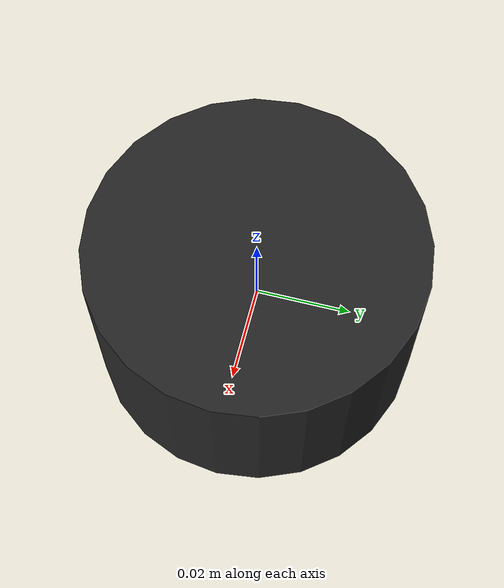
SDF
<?xml version="1.0"?>
<sdf version="1.6">
  <model name="livox_mid360">
    <link name="base_link">
      <inertial>
        <mass>0.265</mass>
        <inertia>
          <ixx>0.0002</ixx>
          <ixy>0</ixy>
          <ixz>0</ixz>
          <iyy>0.0002</iyy>
          <iyz>0</iyz>
          <izz>0.0002</izz>
        </inertia>
      </inertial>

      <collision name="collision">
        <geometry>
          <cylinder>
            <radius>0.035</radius>
            <length>0.04</length>
          </cylinder>
        </geometry>
      </collision>

      <visual name="visual">
        <geometry>
          <cylinder>
            <radius>0.035</radius>
            <length>0.04</length>
          </cylinder>
        </geometry>
        <material>
          <ambient>0.1 0.1 0.1 1</ambient>
          <diffuse>0.15 0.15 0.15 1</diffuse>
          <specular>0.1 0.1 0.1 1</specular>
        </material>
      </visual>

      <sensor name="mid360_ray" type="ray">
        <pose>0 0 0 0 0 0</pose>
        <always_on>1</always_on>
        <visualize>0</visualize>
        <update_rate>10</update_rate>

        <ray>
          <scan>
            <horizontal>
              <samples>720</samples>
              <resolution>1</resolution>
              <min_angle>-3.14159265359</min_angle>
              <max_angle>3.14159265359</max_angle>
            </horizontal>
            <vertical>
              <samples>64</samples>
              <resolution>1</resolution>
              <min_angle>-0.12217304764</min_angle>
              <max_angle>0.90757121104</max_angle>
            </vertical>
          </scan>
          <range>
            <min>0.1</min>
            <max>40.0</max>
            <resolution>0.02</resolution>
          </range>
          <noise>
            <type>gaussian</type>
            <mean>0.0</mean>
            <stddev>0.01</stddev>
          </noise>
        </ray>

        <plugin name="gazebo_ros_mid360_controller" filename="libgazebo_ros_velodyne_laser.so">
          <topicName>/mid360/points</topicName>
          <frameName>mid360_link</frameName>
          <min_range>0.1</min_range>
          <max_range>40.0</max_range>
          <gaussianNoise>0.01</gaussianNoise>
          <organize_cloud>true</organize_cloud>
        </plugin>
      </sensor>

      <plugin name="p3d_ground_truth" filename="libgazebo_ros_p3d.so">
        <alwaysOn>1</alwaysOn>
        <updateRate>10.0</updateRate>
        <bodyName>base_link</bodyName>
        <topicName>/ground_truth/state</topicName>
        <frameName>map</frameName>
        <xyzOffset>0 0 0</xyzOffset>
        <rpyOffset>0 0 0</rpyOffset>
        <gaussianNoise>0</gaussianNoise>
      </plugin>
    </link>
  </model>
</sdf>
